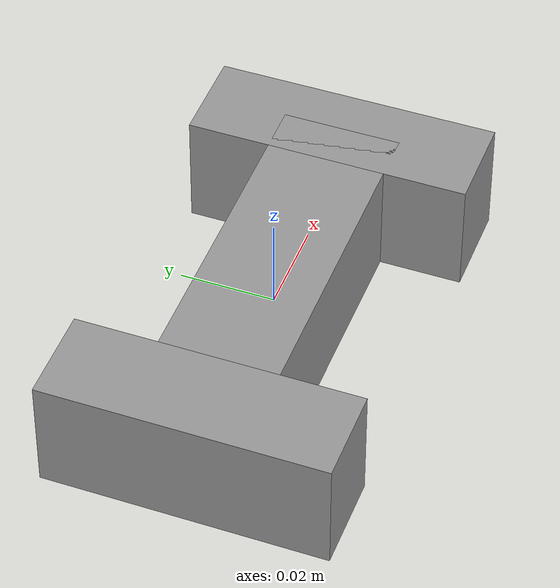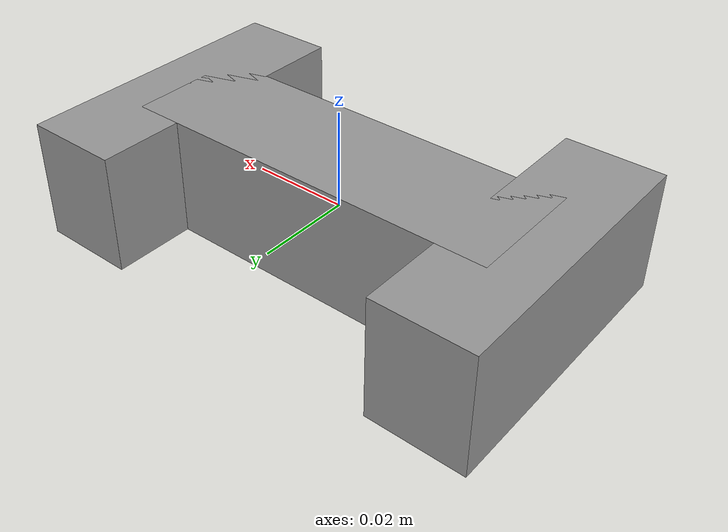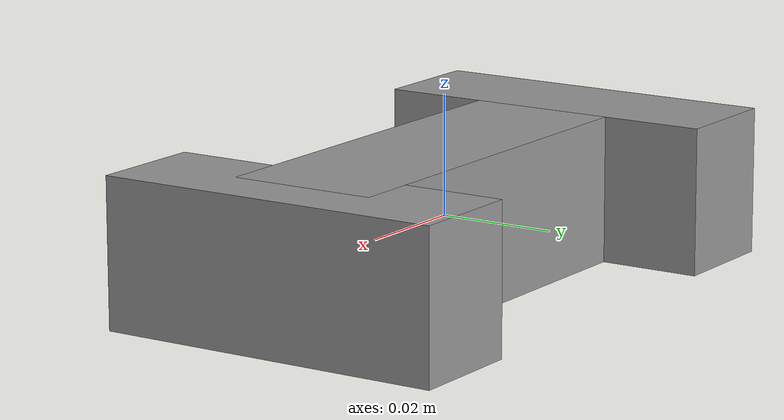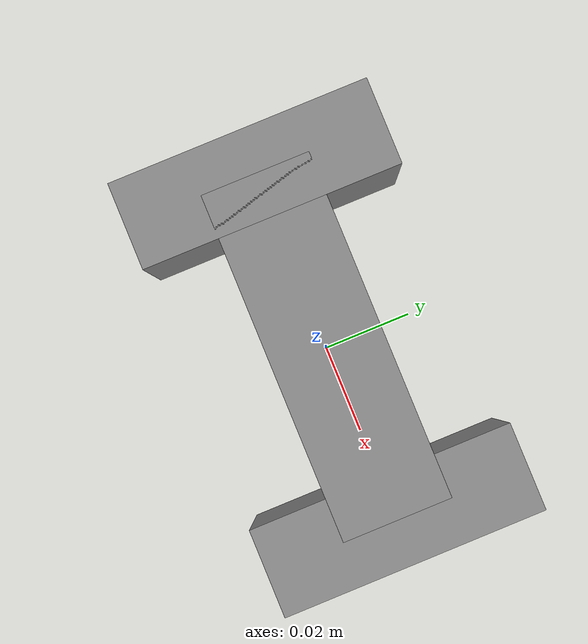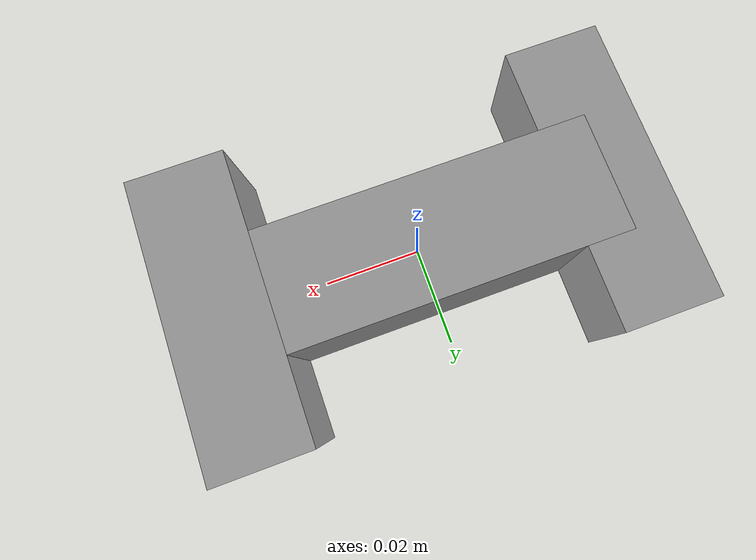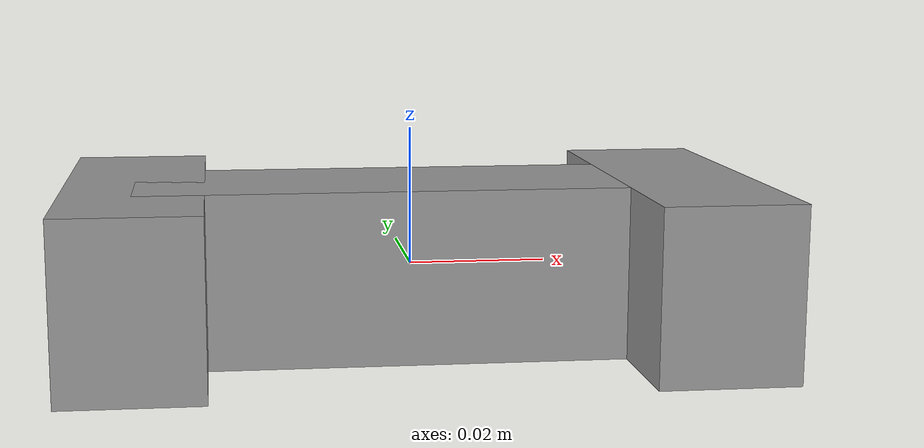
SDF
<?xml version='1.0'?>
<sdf version='1.6'>
  <model name='I_shape'>
    <link name='link'>
      <inertial>
        <mass>0.15</mass>
        <inertia>
          <ixx>0.0002</ixx> <ixy>0</ixy> <ixz>0</ixz>
          <iyy>0.0002</iyy> <iyz>0</iyz>
          <izz>0.0004</izz>
        </inertia>
      </inertial>

      <visual name='web_vis'>
        <geometry><box><size>0.08 0.025 0.025</size></box></geometry>
        <material><script><name>Gazebo/Grey</name></script></material>
      </visual>
      <collision name='web_col'>
        <geometry><box><size>0.08 0.025 0.025</size></box></geometry>
        <surface><friction><ode><mu>100.0</mu><mu2>100.0</mu2></ode></friction></surface>
      </collision>

      <visual name='left_vis'>
        <pose>-0.04 0 0 0 0 0</pose>
        <geometry><box><size>0.02 0.06 0.025</size></box></geometry>
        <material><script><name>Gazebo/Grey</name></script></material>
      </visual>
      <collision name='left_col'>
        <pose>-0.04 0 0 0 0 0</pose>
        <geometry><box><size>0.02 0.06 0.025</size></box></geometry>
        <surface><friction><ode><mu>100.0</mu><mu2>100.0</mu2></ode></friction></surface>
      </collision>

      <visual name='right_vis'>
        <pose>0.04 0 0 0 0 0</pose>
        <geometry><box><size>0.02 0.06 0.025</size></box></geometry>
        <material><script><name>Gazebo/Grey</name></script></material>
      </visual>
      <collision name='right_col'>
        <pose>0.04 0 0 0 0 0</pose>
        <geometry><box><size>0.02 0.06 0.025</size></box></geometry>
        <surface><friction><ode><mu>100.0</mu><mu2>100.0</mu2></ode></friction></surface>
      </collision>
    </link>
  </model>
</sdf>
